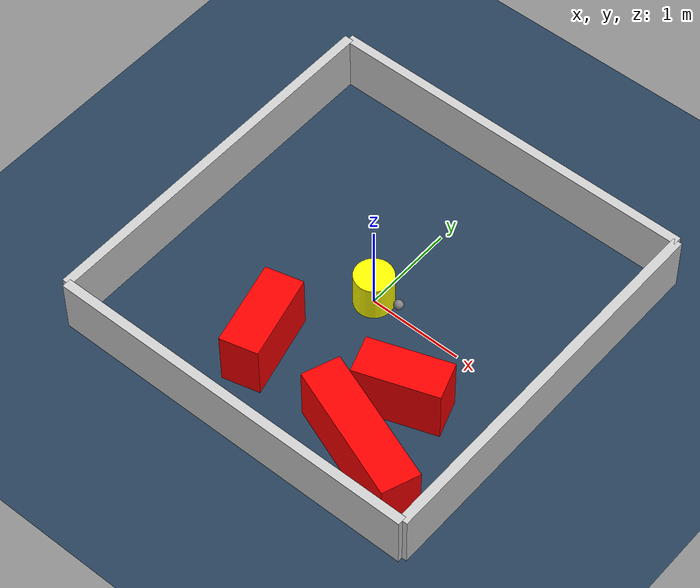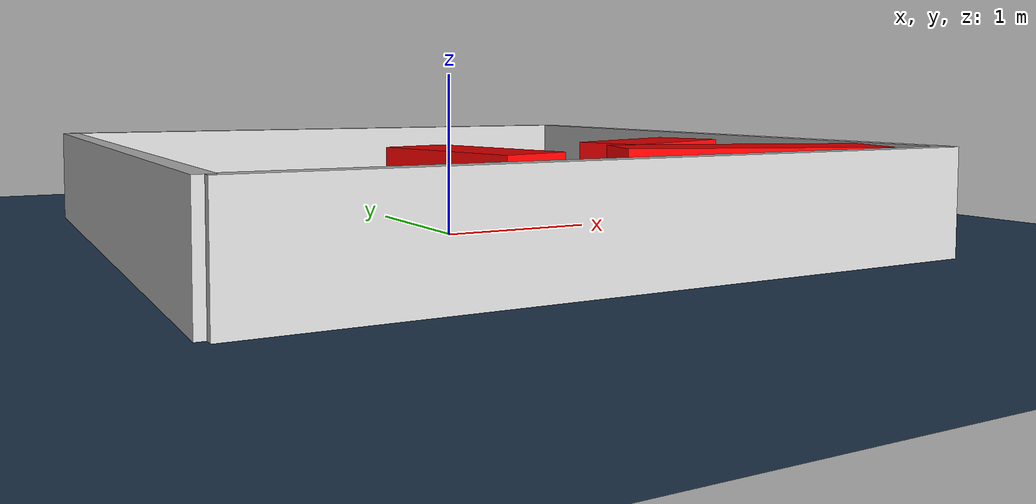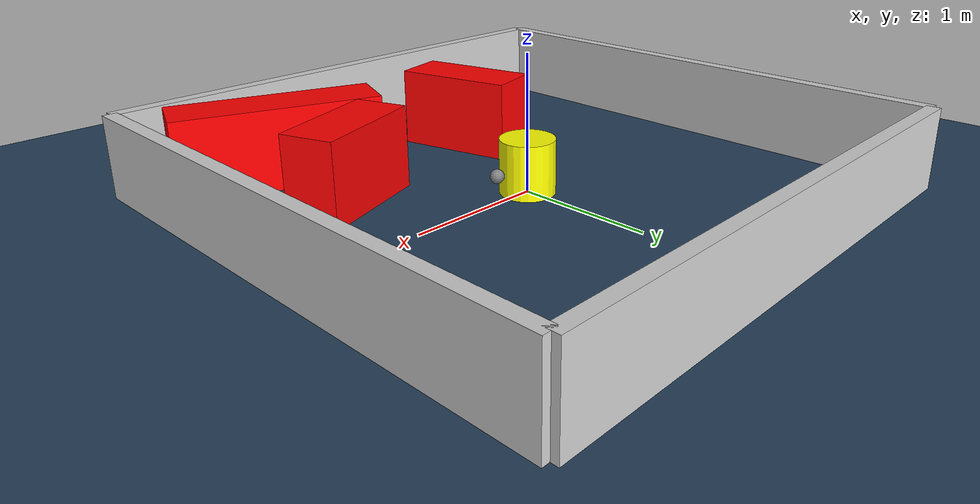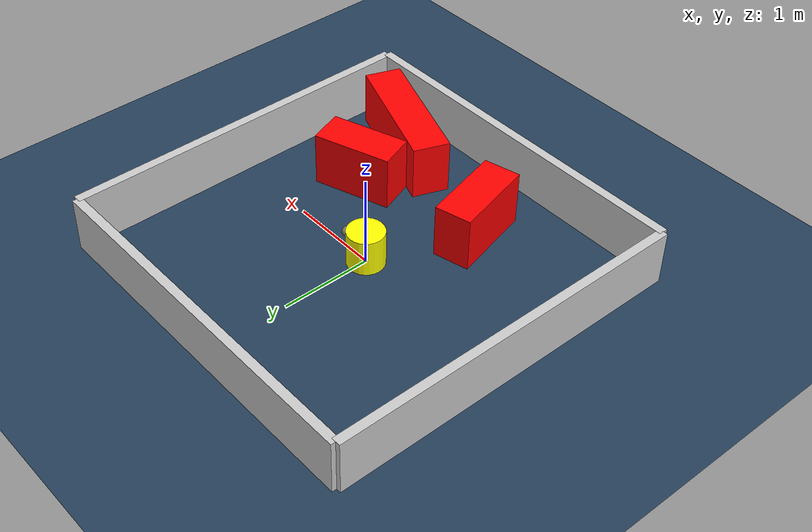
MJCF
<?xml version="1.0" ?>
<mujoco model="generated_environment">
  <option timestep="0.01" integrator="RK4" cone="elliptic"/>
  <default>
    <geom density="1"/>
  </default>
  <asset>
    <texture builtin="gradient" height="3072" rgb1="0.3 0.5 0.7" rgb2="0 0 0" type="skybox" width="512"/>
    <texture builtin="checker" height="300" mark="edge" markrgb="0.8 0.8 0.8" name="groundplane" rgb1="0.2 0.3 0.4" rgb2="0.1 0.2 0.3" type="2d" width="300"/>
    <material name="groundplane" reflectance="0.2" texrepeat="5 5" texture="groundplane" texuniform="true"/>
    <material name="robot" rgba="0.0 1.0 0.0 1"/>
  </asset>
  <worldbody>
    <light dir="0 0 -1" directional="true" pos="0 0 1.5"/>
    <geom condim="4" friction="1.0 0.005 0.001" material="groundplane" name="floor" size="0 0 0.05" type="plane"/>
    <body name="walls">
      <geom name="wall_1" condim="4" pos="-2.0 0.0 0.3" rgba="0.800000011920929 0.800000011920929 0.800000011920929 1.0" size="0.05 2.0 0.3" type="box"/>
      <geom name="wall_2" condim="4" pos="2.0 0.0 0.3" rgba="0.800000011920929 0.800000011920929 0.800000011920929 1.0" size="0.05 2.0 0.3" type="box"/>
      <geom name="wall_3" condim="4" pos="0.0 -2.0 0.3" rgba="0.800000011920929 0.800000011920929 0.800000011920929 1.0" size="2.0 0.05 0.3" type="box"/>
      <geom name="wall_4" condim="4" pos="0.0 2.0 0.3" rgba="0.800000011920929 0.800000011920929 0.800000011920929 1.0" size="2.0 0.05 0.3" type="box"/>
    </body>
    <body name="robot">
      <joint name="joint_x" type="slide" pos="0 0 0" axis="1 0 0"/>
      <joint name="joint_y" type="slide" pos="0 0 0" axis="0 1 0"/>
      <geom name="robot" type="sphere" pos="0.3 0.0 0.2" size="0.05" mass="5." friction="1.0 0.005 0.0001" condim="4" rgba="0.5 0.5 0.5 1.0"/>
      <site name="sensor_ball"/>
    </body>
    <body name="obstacle_movable_1">
      <geom name="obstacle_movable_1" condim="4" pos="0.0 0.0 0.2" euler="0 0 0.0" friction="1.0 0.005 0.001" rgba="1.0 1.0 0.0 1.0" size="0.2 0.2 0.0" type="cylinder" mass="0.1"/>
      <joint type="free"/>
    </body>
    <body name="obstacle_2_static">
      <geom name="obstacle_2_static" condim="4" pos="0.9714632130574861 -0.7492532484289269 0.3" euler="0 0 19.212506698140327" friction="1.0 0.005 0.001" rgba="1 0 0 1" size="0.4324306412173516 0.2 0.3" type="box"/>
    </body>
    <body name="obstacle_3_static">
      <geom name="obstacle_3_static" condim="4" pos="1.0713442481228377 -1.4626012179806094 0.3" euler="0 0 159.60826294135558" friction="1.0 0.005 0.001" rgba="1 0 0 1" size="0.7279365047480115 0.2 0.3" type="box"/>
    </body>
    <body name="obstacle_4_static">
      <geom name="obstacle_4_static" condim="4" pos="-0.4232633984522811 -1.0825629123400113 0.3" euler="0 0 104.11691766896669" friction="1.0 0.005 0.001" rgba="1 0 0 1" size="0.45721030103591326 0.2 0.3" type="box"/>
    </body>
  </worldbody>
  <actuator>
    <motor name="actuator_x" joint="joint_x" gear="1" ctrlrange="-1 1"/>
    <motor name="actuator_y" joint="joint_y" gear="1" ctrlrange="-1 1"/>
  </actuator>
</mujoco>
